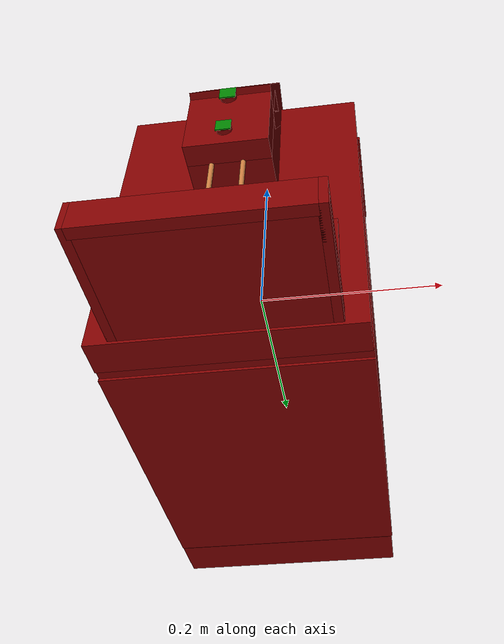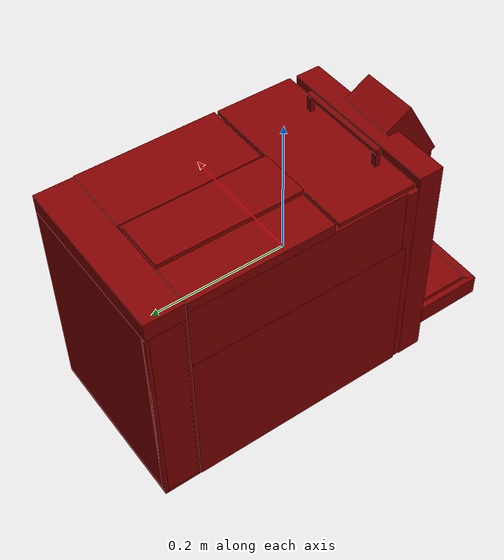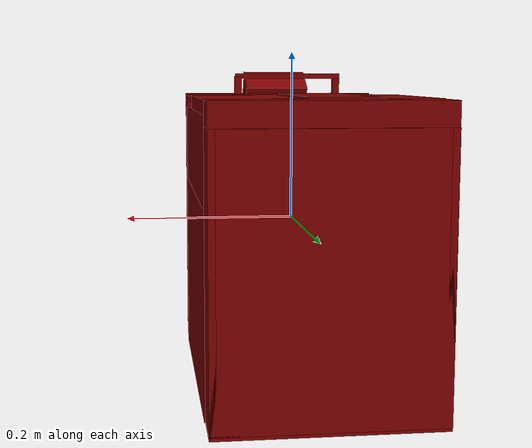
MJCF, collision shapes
<?xml version='1.0' encoding='UTF-8'?>
<mujoco model="model">
  <compiler angle="radian"/>
  <asset>
    <mesh file="visuals/Body001.obj" name="Body001_vis"/>
    <mesh file="visuals/Button001.obj" name="Button001_vis"/>
    <mesh file="visuals/Button002.obj" name="Button002_vis"/>
    <mesh file="visuals/Container001_Clear.obj" name="Container001_Clear_vis"/>
    <mesh file="visuals/Lid001.obj" name="Lid001_vis"/>
    <mesh file="visuals/Lid002.obj" name="Lid002_vis"/>
    <mesh file="visuals/Lid003.obj" name="Lid003_vis"/>
    <mesh file="visuals/Lid004_Clear.obj" name="Lid004_Clear_vis"/>
    <texture file="visuals/T_BC001.png" name="Body001_material" type="2d"/>
    <material name="Body001_material" rgba="1 1 1 1.0" texture="Body001_material" shininess="0.2512328028678894" specular="0.3103448502657381"/>
    <texture file="visuals/T_BC001.png" name="Button001_material" type="2d"/>
    <material name="Button001_material" rgba="1 1 1 1.0" texture="Button001_material" shininess="0.2512328028678894" specular="0.3103448502657381"/>
    <texture file="visuals/T_BC001.png" name="Button002_material" type="2d"/>
    <material name="Button002_material" rgba="1 1 1 1.0" texture="Button002_material" shininess="0.2512328028678894" specular="0.3103448502657381"/>
    <texture file="visuals/T_BC001.png" name="Container001_Clear_material" type="2d"/>
    <material name="Container001_Clear_material" rgba="1 1 1 0.15000000596046448" texture="Container001_Clear_material" shininess="0.2512328028678894" specular="0.3103448502657381"/>
    <texture file="visuals/T_BC001.png" name="Lid004_Clear_material" type="2d"/>
    <material name="Lid004_Clear_material" rgba="1 1 1 0.15000000596046448" texture="Lid004_Clear_material" shininess="0.2512328028678894" specular="0.3103448502657381"/>
    <texture file="visuals/T_BC001.png" name="Lid001_material" type="2d"/>
    <material name="Lid001_material" rgba="1 1 1 1.0" texture="Lid001_material" shininess="0.2512328028678894" specular="0.3103448502657381"/>
    <texture file="visuals/T_BC001.png" name="Lid002_material" type="2d"/>
    <material name="Lid002_material" rgba="1 1 1 1.0" texture="Lid002_material" shininess="0.2512328028678894" specular="0.3103448502657381"/>
    <texture file="visuals/T_BC001.png" name="Lid003_material" type="2d"/>
    <material name="Lid003_material" rgba="1 1 1 1.0" texture="Lid003_material" shininess="0.2512328028678894" specular="0.3103448502657381"/>
  </asset>
  <default>
    <default class="visual">
      <geom conaffinity="0" contype="0" group="1" type="mesh"/>
    </default>
    <default class="collision">
      <geom group="0" rgba="0.5 0 0 0.5"/>
    </default>
    <default class="spawn">
      <geom group="0" rgba="1 1 1 0.5" contype="0" conaffinity="0"/>
      <site group="0" rgba="1 1 1 0.5"/>
    </default>
    <default class="region">
      <geom group="1" conaffinity="0" contype="0" rgba="0 1 0 0"/>
    </default>
  </default>
  <worldbody>
    <body>
      <body name="object">
        <geom class="collision" type="box" pos="-0.00014733224816154689 -0.218706876039505 0.016191335394978523" size="0.007358642295002937 0.0006659436621703207 0.007359277456998825" quat="1.0 0.0 0.0 0.0" name="start_button_2" rgba="0.0 0.5 0 0.5"/>
        <geom class="collision" type="box" pos="3.725290298461914e-09 -0.21779197454452515 0.07285387068986893" size="0.007973047904670238 0.000724545621778816 0.007974797859787941" quat="1.0 0.0 0.0 0.0" name="start_button_1" rgba="0.0 0.5 0 0.5"/>
        <site type="cylinder" rgba="0.8 0.5 0.25 1" size="0.002483069198206067 0.07200757414102554" pos="-0.015114329755306244 -0.1911604404449463 -0.07771611213684082" name="coffee_liquid_left"/>
        <site type="cylinder" rgba="0.8 0.5 0.25 1" size="0.002483069198206067 0.07200757414102554" pos="0.014915376901626587 -0.1911604404449463 -0.07771611213684082" name="coffee_liquid_right"/>
        <site rgba="0 0 0 0" size="0.009999999776482582 0.009999999776482582" pos="0.0002097301185131073 -0.1925683617591858 -0.14701135456562042" name="receptacle_place_site"/>
        <geom mesh="Body001_vis" type="mesh" solimp="0.998 0.998 0.001" solref="0.001 1" density="100" friction="0.95 0.3 0.1" class="visual" material="Body001_material"/>
        <geom class="collision" type="box" pos="5.736110688303597e-05 -0.09903420507907867 -0.02374921552836895" size="0.12226889282464981 0.011113685555756092 0.1540062576532364" quat="1.0 0.0 0.0 0.0"/>
        <geom class="collision" type="box" pos="-0.0004134452319703996 -0.12809962034225464 -0.015755146741867065" size="0.1217949166893959 0.01795090176165104 0.16406992077827454" quat="1.0 0.0 0.0 0.0"/>
        <geom class="collision" type="box" pos="5.7341178035130724e-05 -0.16657817363739014 0.062068816274404526" size="0.04075561836361885 0.02181125245988369 0.05818682163953781" quat="1.0 0.0 0.0 0.0"/>
        <geom class="collision" type="box" pos="5.732921636081301e-05 -0.20539826154708862 -0.16867326200008392" size="0.10036101937294006 0.06502079218626022 0.008413019590079784" quat="1.0 0.0 0.0 0.0"/>
        <geom class="collision" type="box" pos="5.7341178035130724e-05 -0.1966419219970703 0.04542206600308418" size="0.04075561836361885 0.011066005565226078 0.041541051119565964" quat="1.0 0.0 0.0 0.0"/>
        <geom class="collision" type="box" pos="0.11267533898353577 0.06279972940683365 -0.022094232961535454" size="0.00965090561658144 0.15486709773540497 0.1556621789932251" quat="1.0 0.0 0.0 0.0"/>
        <geom class="collision" type="box" pos="-0.07955674827098846 0.06279972940683365 -0.020949535071849823" size="0.04313566908240318 0.15486709773540497 0.15680697560310364" quat="1.0 0.0 0.0 0.0"/>
        <geom class="collision" type="box" pos="0.002099212259054184 0.2098241001367569 -0.02374921552836895" size="0.10507692396640778 0.007984829135239124 0.15400740504264832" quat="1.0 0.0 0.0 0.0"/>
        <geom class="collision" type="box" pos="-0.00014238432049751282 0.05916852131485939 -0.07018726319074631" size="0.12268807739019394 0.1585552841424942 0.11016704887151718" quat="1.0 0.0 0.0 0.0"/>
        <geom class="collision" type="box" pos="0.07138699293136597 0.11761411279439926 0.14174219965934753" size="0.050939250737428665 0.10005271434783936 0.007546746172010899" quat="1.0 0.0 0.0 0.0"/>
        <geom class="collision" type="box" pos="-0.09289637207984924 0.11761411279439926 0.14174218475818634" size="0.03062666952610016 0.10005271434783936 0.007546757347881794" quat="1.0 0.0 0.0 0.0"/>
        <geom class="collision" type="box" pos="-0.0960945188999176 -0.20539826154708862 -0.1618238389492035" size="0.004210353828966618 0.06502147018909454 0.015262465924024582" quat="1.0 0.0 0.0 0.0"/>
        <geom class="collision" type="box" pos="0.0955367386341095 -0.20539826154708862 -0.1618238389492035" size="0.004210357088595629 0.06502152234315872 0.015262479893863201" quat="1.0 0.0 0.0 0.0"/>
        <geom class="collision" type="box" pos="-0.0013003163039684296 -0.2647453844547272 -0.1618238389492035" size="0.09381555765867233 0.00567487021908164 0.015262494795024395" quat="1.0 0.0 0.0 0.0"/>
        <geom class="collision" type="box" pos="5.7341178035130724e-05 -0.1693110466003418 0.12164691090583801" size="0.04075561836361885 0.021811386570334435 0.05129740387201309" quat="0.9667389988899231 -0.25576484203338623 0.0 0.0"/>
        <body name="Button001">
          <joint axis="0.0 1.0 0.0" pos="-4.398942110128701e-06 -0.21273621916770935 0.0728834718465805" limited="true" name="Button001_joint" range="0.0 0.002" type="slide" damping="1" frictionloss="1" armature=".01" stiffness="0.05"/>
          <geom mesh="Button001_vis" type="mesh" solimp="0.998 0.998 0.001" solref="0.001 1" density="100" friction="0.95 0.3 0.1" class="visual" material="Button001_material"/>
          <geom class="collision" type="cylinder" pos="3.725290298461914e-09 -0.21434150636196136 0.07284676283597946" size="0.007973047904670238 0.002511697355657816" quat="0.7080055475234985 0.7062068581581116 -5.012328053289163e-17 2.8755322647572754e-17"/>
        </body>
        <body name="Button002">
          <joint axis="-7.086068566829654e-21 0.9999680519104004 0.007991238497197628" pos="-0.0001584837882546708 -0.21303649246692657 0.016122689470648766" limited="true" name="Button002_joint" range="0.0 0.002" type="slide" damping="1" frictionloss="1" armature=".01" stiffness="0.05"/>
          <geom mesh="Button002_vis" type="mesh" solimp="0.998 0.998 0.001" solref="0.001 1" density="100" friction="0.95 0.3 0.1" class="visual" material="Button002_material"/>
          <geom class="collision" type="cylinder" pos="-0.00017231069796252996 -0.21521440148353577 0.016193432733416557" size="0.007380757946521044 0.0022818034049123526" quat="0.7067742943763733 0.707439124584198 -5.044716144737554e-17 2.8941130574209315e-17"/>
        </body>
        <body name="Container001_Clear">
          <joint axis="0.0 0.0 1.0" pos="-0.0001857653260231018 0.24504730105400085 -0.028559528291225433" limited="true" name="Container001_Clear_joint" range="0.0 0.1" type="slide" damping="1" frictionloss="1" armature=".01" stiffness="0.05"/>
          <geom mesh="Container001_Clear_vis" type="mesh" solimp="0.998 0.998 0.001" solref="0.001 1" density="100" friction="0.95 0.3 0.1" class="visual" material="Container001_Clear_material"/>
          <geom class="collision" type="box" pos="-0.0003708398435264826 0.24504730105400085 -0.1779904067516327" size="0.12182674556970596 0.02653096616268158 0.0024177373852580786" quat="1.0 0.0 0.0 0.0"/>
          <geom class="collision" type="box" pos="0.11777901649475098 0.24504730105400085 -0.02714800089597702" size="0.0036768976133316755 0.02653098851442337 0.1498427391052246" quat="1.0 0.0 0.0 0.0"/>
          <geom class="collision" type="box" pos="-0.1184675395488739 0.24504730105400085 -0.02714800089597702" size="0.0036768976133316755 0.02653098851442337 0.1498427391052246" quat="1.0 0.0 0.0 0.0"/>
          <geom class="collision" type="box" pos="-0.0007130247540771961 0.2694123089313507 -0.027147997170686722" size="0.1218000128865242 0.0021659780759364367 0.1498427391052246" quat="1.0 0.0 0.0 0.0"/>
          <geom class="collision" type="box" pos="-0.0007130247540771961 0.22100934386253357 -0.027147997170686722" size="0.1218000128865242 0.0021659780759364367 0.1498427391052246" quat="1.0 0.0 0.0 0.0"/>
          <body name="Lid004_Clear">
            <joint axis="0.0 0.0 1.0" pos="-0.0001857653260231018 0.24504733085632324 0.13565248250961304" limited="true" name="Lid004_Clear_joint" range="0.0 0.1" type="slide" damping="1" frictionloss="1" armature=".01" stiffness="0.05"/>
            <geom mesh="Lid004_Clear_vis" type="mesh" solimp="0.998 0.998 0.001" solref="0.001 1" density="100" friction="0.95 0.3 0.1" class="visual" material="Lid004_Clear_material"/>
            <geom class="collision" type="box" pos="-0.0003708398435264826 0.24504730105400085 0.13591669499874115" size="0.12182674556970596 0.026530969887971878 0.012990687973797321" quat="1.0 0.0 0.0 0.0"/>
          </body>
        </body>
        <body name="Lid001">
          <joint axis="0.0 0.0 1.0" pos="0.006970003712922335 -0.2138250768184662 -0.15125639736652374" limited="true" name="Lid001_joint" range="0.0 0.1" type="slide" damping="1" frictionloss="1" armature=".01" stiffness="0.05"/>
          <geom mesh="Lid001_vis" type="mesh" solimp="0.998 0.998 0.001" solref="0.001 1" density="100" friction="0.95 0.3 0.1" class="visual" material="Lid001_material"/>
          <geom class="collision" type="box" pos="5.975486055831425e-05 -0.21538689732551575 -0.1520012468099594" size="0.0887070745229721 0.041985977441072464 0.006235729902982712" quat="1.0 0.0 0.0 0.0"/>
        </body>
        <body name="Lid002">
          <joint axis="-1.0 0.0 0.0" pos="5.737319588661194e-05 0.21820124983787537 0.13979633152484894" limited="true" name="Lid002_joint" range="0.0 1.5707963267948966" type="hinge" damping="1" frictionloss="1" armature=".01" stiffness="0.05"/>
          <geom mesh="Lid002_vis" type="mesh" solimp="0.998 0.998 0.001" solref="0.001 1" density="100" friction="0.95 0.3 0.1" class="visual" material="Lid002_material"/>
          <geom class="collision" type="box" pos="5.7365745306015015e-05 -0.0446573831140995 0.14413714408874512" size="0.12358827143907547 0.056192055344581604 0.003103956114500761" quat="1.0 0.0 0.0 0.0"/>
          <geom class="collision" type="box" pos="-0.020853297784924507 0.11423901468515396 0.14785459637641907" size="0.03763171657919884 0.101021908223629 0.0031039733439683914" quat="1.0 0.0 0.0 0.0"/>
          <geom class="collision" type="box" pos="-0.007102926727384329 -0.0834168791770935 0.17115922272205353" size="0.06759092956781387 0.003377871587872505 0.0031039356254041195" quat="1.0 0.0 0.0 0.0"/>
          <geom class="collision" type="box" pos="-0.07011966407299042 -0.0834168791770935 0.15968762338161469" size="0.0045741950161755085 0.0033778748475015163 0.011309267953038216" quat="1.0 0.0 0.0 0.0"/>
          <geom class="collision" type="box" pos="0.05683575198054314 -0.0834168791770935 0.15968762338161469" size="0.0045741950161755085 0.0033778748475015163 0.011309267953038216" quat="1.0 0.0 0.0 0.0"/>
        </body>
        <body name="Lid003">
          <joint axis="1.0 0.0 0.0" pos="5.6866760132834315e-05 -0.17181208729743958 -0.1448887437582016" limited="true" name="Lid003_joint" range="0.0 0.7853981633974483" type="hinge" damping="1" frictionloss="1" armature=".01" stiffness="0.05"/>
          <geom mesh="Lid003_vis" type="mesh" solimp="0.998 0.998 0.001" solref="0.001 1" density="100" friction="0.95 0.3 0.1" class="visual" material="Lid003_material"/>
          <geom class="collision" type="box" pos="3.725290298461914e-09 -0.1633439064025879 -0.10548859089612961" size="0.09905333817005157 0.003888249397277832 0.0391121581196785" quat="0.9985918998718262 -0.05304950103163719 0.0 0.0"/>
        </body>
        <geom class="region" name="reg_main" type="box" pos="0.0 0.0 0.0" size="0.12232908606529236 0.2708019018173218 0.17988888919353485"/>
      </body>
    </body>
  </worldbody>
  <actuator>
    <motor name="Button001_joint_actuator" joint="Button001_joint" gear="0.5"/>
    <motor name="Button002_joint_actuator" joint="Button002_joint" gear="0.5"/>
    <motor name="Container001_Clear_joint_actuator" joint="Container001_Clear_joint" gear="10"/>
    <motor name="Lid001_joint_actuator" joint="Lid001_joint" gear="10"/>
    <motor name="Lid002_joint_actuator" joint="Lid002_joint" gear="10"/>
    <motor name="Lid003_joint_actuator" joint="Lid003_joint" gear="10"/>
    <motor name="Lid004_Clear_joint_actuator" joint="Lid004_Clear_joint" gear="10"/>
  </actuator>
</mujoco>
